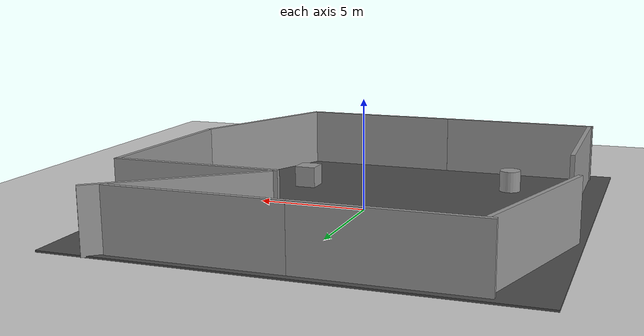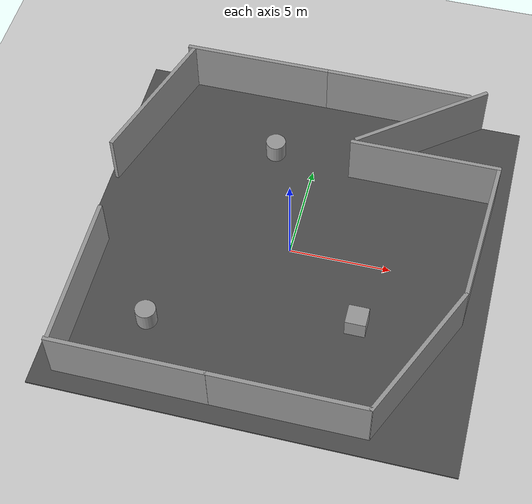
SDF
<sdf version="1.6">
 <world name="default">
  <model name="ground_plane">
   <static>1</static>
   <link name="link">
    <collision name="collision">
     <geometry><plane><normal>0 0 1</normal><size>100 100</size></plane></geometry>
     <surface><friction><ode><mu>100</mu><mu2>50</mu2></ode></friction></surface>
    </collision>
    <visual name="visual">
     <cast_shadows>0</cast_shadows>
     <geometry><plane><normal>0 0 1</normal><size>100 100</size></plane></geometry>
     <material>
      <script><uri>file://media/materials/scripts/gazebo.material</uri><name>Gazebo/Grey</name></script>
     </material>
    </visual>
   </link>
  </model>
  <light name="sun" type="directional">
   <pose>0 0 10 0 -0 0</pose>
   <diffuse>0.8 0.8 0.8 1</diffuse>
   <specular>0.1 0.1 0.1 1</specular>
   <attenuation>
    <range>1000</range>
    <constant>0.9</constant>
    <linear>0.01</linear>
    <quadratic>0.001</quadratic>
   </attenuation>
   <direction>-0.5 0.5 -1</direction>
  </light>
  <gravity>0 0 -9.8</gravity>
  <magnetic_field>6e-06 2.3e-05 -4.2e-05</magnetic_field>
  <atmosphere type="adiabatic"/>
  <physics name="default_physics" default="0" type="ode">
   <max_step_size>0.001</max_step_size>
   <real_time_factor>1</real_time_factor>
   <real_time_update_rate>1000</real_time_update_rate>
  </physics>
  <scene><ambient>0.4 0.4 0.4 1</ambient><background>0.7 0.7 0.7 1</background><shadows>1</shadows></scene>
  <spherical_coordinates>
   <surface_model>EARTH_WGS84</surface_model>
   <latitude_deg>0</latitude_deg>
   <longitude_deg>0</longitude_deg>
   <elevation>0</elevation>
   <heading_deg>0</heading_deg>
  </spherical_coordinates>
  <model name="grey_wall">
   <static>1</static>
   <link name="link">
    <pose>0 0 1.4 0 -0 0</pose>
    <collision name="collision"><geometry><box><size>7.5 0.2 2.8</size></box></geometry></collision>
    <visual name="visual">
     <cast_shadows>0</cast_shadows>
     <geometry><box><size>7.5 0.2 2.8</size></box></geometry>
     <material>
      <script>
       <uri>model://grey_wall/materials/scripts</uri>
       <uri>model://grey_wall/materials/textures</uri>
       <name>vrc/grey_wall</name>
      </script>
     </material>
    </visual>
   </link>
   <pose>2.13497 -9.02941 0 0 -0 0</pose>
  </model>
  <model name="grey_wall_0">
   <static>1</static>
   <link name="link">
    <pose>0 0 1.4 0 -0 0</pose>
    <collision name="collision"><geometry><box><size>7.5 0.2 2.8</size></box></geometry></collision>
    <visual name="visual">
     <cast_shadows>0</cast_shadows>
     <geometry><box><size>7.5 0.2 2.8</size></box></geometry>
     <material>
      <script>
       <uri>model://grey_wall/materials/scripts</uri>
       <uri>model://grey_wall/materials/textures</uri>
       <name>vrc/grey_wall</name>
      </script>
     </material>
    </visual>
   </link>
   <pose>-5.29813 -9.03553 0 0 -0 0</pose>
  </model>
  <model name="grey_wall_1">
   <static>1</static>
   <link name="link">
    <pose>0 0 1.4 0 -0 0</pose>
    <collision name="collision"><geometry><box><size>7.5 0.2 2.8</size></box></geometry></collision>
    <visual name="visual">
     <cast_shadows>0</cast_shadows>
     <geometry><box><size>7.5 0.2 2.8</size></box></geometry>
     <material>
      <script>
       <uri>model://grey_wall/materials/scripts</uri>
       <uri>model://grey_wall/materials/textures</uri>
       <name>vrc/grey_wall</name>
      </script>
     </material>
    </visual>
   </link>
   <pose>7.30327 -5.67443 0 0 -0 1.15365</pose>
  </model>
  <model name="grey_wall_2">
   <static>1</static>
   <link name="link">
    <pose>0 0 1.4 0 -0 0</pose>
    <collision name="collision"><geometry><box><size>7.5 0.2 2.8</size></box></geometry></collision>
    <visual name="visual">
     <cast_shadows>0</cast_shadows>
     <geometry><box><size>7.5 0.2 2.8</size></box></geometry>
     <material>
      <script>
       <uri>model://grey_wall/materials/scripts</uri>
       <uri>model://grey_wall/materials/textures</uri>
       <name>vrc/grey_wall</name>
      </script>
     </material>
    </visual>
   </link>
   <pose>9.01685 1.45574 0 0 -0 1.51711</pose>
  </model>
  <model name="grey_wall_3">
   <static>1</static>
   <link name="link">
    <pose>0 0 1.4 0 -0 0</pose>
    <collision name="collision"><geometry><box><size>7.5 0.2 2.8</size></box></geometry></collision>
    <visual name="visual">
     <cast_shadows>0</cast_shadows>
     <geometry><box><size>7.5 0.2 2.8</size></box></geometry>
     <material>
      <script>
       <uri>model://grey_wall/materials/scripts</uri>
       <uri>model://grey_wall/materials/textures</uri>
       <name>vrc/grey_wall</name>
      </script>
     </material>
    </visual>
   </link>
   <pose>5.57022 5.26392 0 0 -0 0</pose>
  </model>
  <model name="grey_wall_4">
   <static>1</static>
   <link name="link">
    <pose>0 0 1.4 0 -0 0</pose>
    <collision name="collision"><geometry><box><size>7.5 0.2 2.8</size></box></geometry></collision>
    <visual name="visual">
     <cast_shadows>0</cast_shadows>
     <geometry><box><size>7.5 0.2 2.8</size></box></geometry>
     <material>
      <script>
       <uri>model://grey_wall/materials/scripts</uri>
       <uri>model://grey_wall/materials/textures</uri>
       <name>vrc/grey_wall</name>
      </script>
     </material>
    </visual>
   </link>
   <pose>4.95807 7.73548 0 0 0 -2.47741</pose>
  </model>
  <model name="grey_wall_5">
   <static>1</static>
   <link name="link">
    <pose>0 0 1.4 0 -0 0</pose>
    <collision name="collision"><geometry><box><size>7.5 0.2 2.8</size></box></geometry></collision>
    <visual name="visual">
     <cast_shadows>0</cast_shadows>
     <geometry><box><size>7.5 0.2 2.8</size></box></geometry>
     <material>
      <script>
       <uri>model://grey_wall/materials/scripts</uri>
       <uri>model://grey_wall/materials/textures</uri>
       <name>vrc/grey_wall</name>
      </script>
     </material>
    </visual>
   </link>
   <pose>3.39537 9.58698 0 0 -0 0</pose>
  </model>
  <model name="grey_wall_6">
   <static>1</static>
   <link name="link">
    <pose>0 0 1.4 0 -0 0</pose>
    <collision name="collision"><geometry><box><size>7.5 0.2 2.8</size></box></geometry></collision>
    <visual name="visual">
     <cast_shadows>0</cast_shadows>
     <geometry><box><size>7.5 0.2 2.8</size></box></geometry>
     <material>
      <script>
       <uri>model://grey_wall/materials/scripts</uri>
       <uri>model://grey_wall/materials/textures</uri>
       <name>vrc/grey_wall</name>
      </script>
     </material>
    </visual>
   </link>
   <pose>-4.07291 9.58612 0 0 -0 0</pose>
  </model>
  <model name="grey_wall_7">
   <static>1</static>
   <link name="link">
    <pose>0 0 1.4 0 -0 0</pose>
    <collision name="collision"><geometry><box><size>7.5 0.2 2.8</size></box></geometry></collision>
    <visual name="visual">
     <cast_shadows>0</cast_shadows>
     <geometry><box><size>7.5 0.2 2.8</size></box></geometry>
     <material>
      <script>
       <uri>model://grey_wall/materials/scripts</uri>
       <uri>model://grey_wall/materials/textures</uri>
       <name>vrc/grey_wall</name>
      </script>
     </material>
    </visual>
   </link>
   <pose>-8.58816 5.90852 0 0 -0 1.27427</pose>
  </model>
  <model name="grey_wall_8">
   <static>1</static>
   <link name="link">
    <pose>0 0 1.4 0 -0 0</pose>
    <collision name="collision"><geometry><box><size>7.5 0.2 2.8</size></box></geometry></collision>
    <visual name="visual">
     <cast_shadows>0</cast_shadows>
     <geometry><box><size>7.5 0.2 2.8</size></box></geometry>
     <material>
      <script>
       <uri>model://grey_wall/materials/scripts</uri>
       <uri>model://grey_wall/materials/textures</uri>
       <name>vrc/grey_wall</name>
      </script>
     </material>
    </visual>
   </link>
   <pose>-8.91193 -5.22479 0 0 0 -1.56332</pose>
  </model>
  <model name="asphalt_plane_0">
   <static>1</static>
   <link name="link">
    <collision name="collision"><geometry><box><size>20 20 0.1</size></box></geometry></collision>
    <visual name="visual">
     <cast_shadows>0</cast_shadows>
     <geometry><box><size>20 20 0.1</size></box></geometry>
     <material>
      <script>
       <uri>model://asphalt_plane/materials/scripts</uri>
       <uri>model://asphalt_plane/materials/textures</uri>
       <name>vrc/asphalt</name>
      </script>
     </material>
    </visual>
   </link>
  </model>
  <model name="unit_cylinder_0">
   <pose>-5.58775 -5.51754 0.550005 1e-05 5e-06 -2.4e-05</pose>
   <link name="link">
    <inertial>
     <mass>1</mass>
     <inertia><ixx>0.145833</ixx><ixy>0</ixy><ixz>0</ixz><iyy>0.145833</iyy><iyz>0</iyz><izz>0.125</izz></inertia>
    </inertial>
    <collision name="collision">
     <geometry><cylinder><radius>0.5</radius><length>1</length></cylinder></geometry>
    </collision>
    <visual name="visual">
     <geometry><cylinder><radius>0.5</radius><length>1</length></cylinder></geometry>
     <material>
      <script><name>Gazebo/Grey</name><uri>file://media/materials/scripts/gazebo.material</uri></script>
     </material>
    </visual>
   </link>
  </model>
  <model name="unit_box_0">
   <pose>4.0867 -3.51043 0.55 0 -0 0</pose>
   <link name="link">
    <inertial>
     <mass>1</mass>
     <inertia>
      <ixx>0.166667</ixx>
      <ixy>0</ixy>
      <ixz>0</ixz>
      <iyy>0.166667</iyy>
      <iyz>0</iyz>
      <izz>0.166667</izz>
     </inertia>
    </inertial>
    <collision name="collision"><geometry><box><size>1 1 1</size></box></geometry></collision>
    <visual name="visual">
     <geometry><box><size>1 1 1</size></box></geometry>
     <material>
      <script><name>Gazebo/Grey</name><uri>file://media/materials/scripts/gazebo.material</uri></script>
     </material>
    </visual>
   </link>
  </model>
  <model name="unit_cylinder_1">
   <pose>-2.1473 5.75131 0.549991 1e-06 -0 3.1e-05</pose>
   <link name="link">
    <inertial>
     <mass>1</mass>
     <inertia><ixx>0.145833</ixx><ixy>0</ixy><ixz>0</ixz><iyy>0.145833</iyy><iyz>0</iyz><izz>0.125</izz></inertia>
    </inertial>
    <collision name="collision">
     <geometry><cylinder><radius>0.5</radius><length>1</length></cylinder></geometry>
    </collision>
    <visual name="visual">
     <geometry><cylinder><radius>0.5</radius><length>1</length></cylinder></geometry>
     <material>
      <script><name>Gazebo/Grey</name><uri>file://media/materials/scripts/gazebo.material</uri></script>
     </material>
    </visual>
   </link>
  </model>
 </world>
</sdf>
